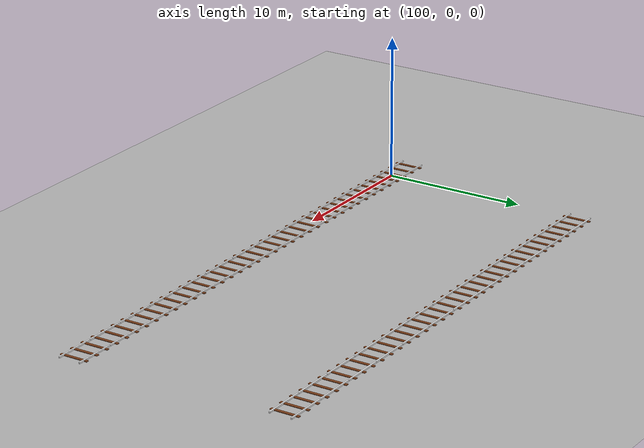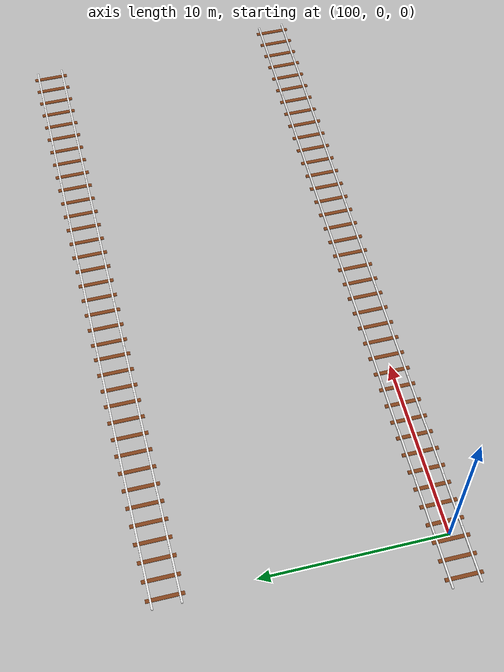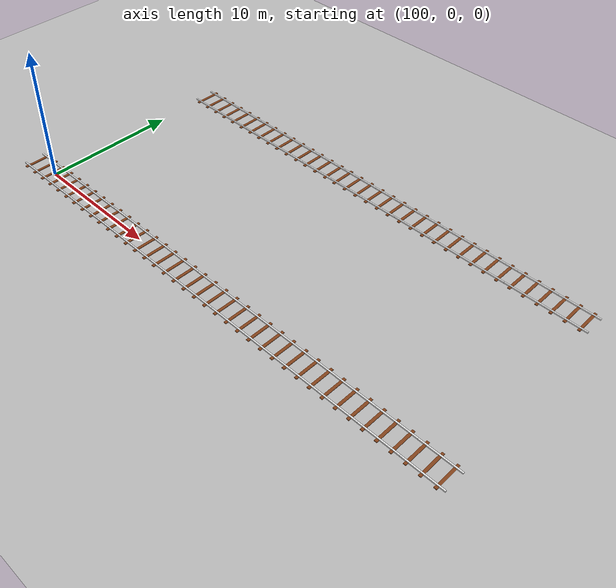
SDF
<sdf version="1.10">
 <world name="myworld">
  <model name="ground_plane">
   <static>true</static>
   <link name="link">
    <collision name="collision">
     <geometry><plane><normal>0 0 1</normal><size>1000 1000</size></plane></geometry>
    </collision>
    <visual name="visual">
     <geometry><plane><normal>0 0 1</normal><size>1000 1000</size></plane></geometry>
     <material>
      <ambient>0.699999988 0.699999988 0.699999988 1</ambient>
      <diffuse>0.699999988 0.699999988 0.699999988 1</diffuse>
     </material>
    </visual>
    <inertial>
     <mass>1</mass>
     <inertia><ixx>1</ixx><ixy>0</ixy><ixz>0</ixz><iyy>1</iyy><iyz>0</iyz><izz>1</izz></inertia>
    </inertial>
   </link>
  </model>
  <model name="rail12_22">
   <static>true</static>
   <pose>98.757199999999997 -0.0065490399999999999 0 0 0 0</pose>
   <link name="rail_link">
    <visual name="rail_left">
     <pose>0 0.75 0.050000000000000003 0 0 0</pose>
     <geometry><box><size>3 0.10000000000000001 0.10000000000000001</size></box></geometry>
     <material>
      <ambient>0.800000012 0.800000012 0.800000012 1</ambient>
      <diffuse>0.899999976 0.899999976 0.899999976 1</diffuse>
     </material>
    </visual>
    <visual name="rail_right">
     <pose>0 -0.75 0.050000000000000003 0 0 0</pose>
     <geometry><box><size>3 0.10000000000000001 0.10000000000000001</size></box></geometry>
     <material>
      <ambient>0.800000012 0.800000012 0.800000012 1</ambient>
      <diffuse>0.899999976 0.899999976 0.899999976 1</diffuse>
     </material>
    </visual>
    <visual name="traverse_1">
     <pose>1 0 0.025000000000000001 0 0 0</pose>
     <geometry><box><size>0.20000000000000001 2 0.050000000000000003</size></box></geometry>
     <material>
      <ambient>0.400000006 0.200000003 0.100000001 1</ambient>
      <diffuse>0.5 0.25 0.100000001 1</diffuse>
     </material>
    </visual>
    <visual name="traverse_2">
     <pose>0 0 0.025000000000000001 0 0 0</pose>
     <geometry><box><size>0.20000000000000001 2 0.050000000000000003</size></box></geometry>
     <material>
      <ambient>0.400000006 0.200000003 0.100000001 1</ambient>
      <diffuse>0.5 0.25 0.100000001 1</diffuse>
     </material>
    </visual>
    <visual name="traverse_3">
     <pose>-1 0 0.025000000000000001 0 0 0</pose>
     <geometry><box><size>0.20000000000000001 2 0.050000000000000003</size></box></geometry>
     <material>
      <ambient>0.400000006 0.200000003 0.100000001 1</ambient>
      <diffuse>0.5 0.25 0.100000001 1</diffuse>
     </material>
    </visual>
   </link>
  </model>
  <model name="rail12_23">
   <static>true</static>
   <pose>101.718 -0.0060675599999999996 0 0 0 0</pose>
   <link name="rail_link">
    <visual name="rail_left">
     <pose>0 0.75 0.050000000000000003 0 0 0</pose>
     <geometry><box><size>3 0.10000000000000001 0.10000000000000001</size></box></geometry>
     <material>
      <ambient>0.800000012 0.800000012 0.800000012 1</ambient>
      <diffuse>0.899999976 0.899999976 0.899999976 1</diffuse>
     </material>
    </visual>
    <visual name="rail_right">
     <pose>0 -0.75 0.050000000000000003 0 0 0</pose>
     <geometry><box><size>3 0.10000000000000001 0.10000000000000001</size></box></geometry>
     <material>
      <ambient>0.800000012 0.800000012 0.800000012 1</ambient>
      <diffuse>0.899999976 0.899999976 0.899999976 1</diffuse>
     </material>
    </visual>
    <visual name="traverse_1">
     <pose>1 0 0.025000000000000001 0 0 0</pose>
     <geometry><box><size>0.20000000000000001 2 0.050000000000000003</size></box></geometry>
     <material>
      <ambient>0.400000006 0.200000003 0.100000001 1</ambient>
      <diffuse>0.5 0.25 0.100000001 1</diffuse>
     </material>
    </visual>
    <visual name="traverse_2">
     <pose>0 0 0.025000000000000001 0 0 0</pose>
     <geometry><box><size>0.20000000000000001 2 0.050000000000000003</size></box></geometry>
     <material>
      <ambient>0.400000006 0.200000003 0.100000001 1</ambient>
      <diffuse>0.5 0.25 0.100000001 1</diffuse>
     </material>
    </visual>
    <visual name="traverse_3">
     <pose>-1 0 0.025000000000000001 0 0 0</pose>
     <geometry><box><size>0.20000000000000001 2 0.050000000000000003</size></box></geometry>
     <material>
      <ambient>0.400000006 0.200000003 0.100000001 1</ambient>
      <diffuse>0.5 0.25 0.100000001 1</diffuse>
     </material>
    </visual>
   </link>
  </model>
  <model name="rail12_24">
   <static>true</static>
   <pose>104.7 -0.0117269 0 0 0 0</pose>
   <link name="rail_link">
    <visual name="rail_left">
     <pose>0 0.75 0.050000000000000003 0 0 0</pose>
     <geometry><box><size>3 0.10000000000000001 0.10000000000000001</size></box></geometry>
     <material>
      <ambient>0.800000012 0.800000012 0.800000012 1</ambient>
      <diffuse>0.899999976 0.899999976 0.899999976 1</diffuse>
     </material>
    </visual>
    <visual name="rail_right">
     <pose>0 -0.75 0.050000000000000003 0 0 0</pose>
     <geometry><box><size>3 0.10000000000000001 0.10000000000000001</size></box></geometry>
     <material>
      <ambient>0.800000012 0.800000012 0.800000012 1</ambient>
      <diffuse>0.899999976 0.899999976 0.899999976 1</diffuse>
     </material>
    </visual>
    <visual name="traverse_1">
     <pose>1 0 0.025000000000000001 0 0 0</pose>
     <geometry><box><size>0.20000000000000001 2 0.050000000000000003</size></box></geometry>
     <material>
      <ambient>0.400000006 0.200000003 0.100000001 1</ambient>
      <diffuse>0.5 0.25 0.100000001 1</diffuse>
     </material>
    </visual>
    <visual name="traverse_2">
     <pose>0 0 0.025000000000000001 0 0 0</pose>
     <geometry><box><size>0.20000000000000001 2 0.050000000000000003</size></box></geometry>
     <material>
      <ambient>0.400000006 0.200000003 0.100000001 1</ambient>
      <diffuse>0.5 0.25 0.100000001 1</diffuse>
     </material>
    </visual>
    <visual name="traverse_3">
     <pose>-1 0 0.025000000000000001 0 0 0</pose>
     <geometry><box><size>0.20000000000000001 2 0.050000000000000003</size></box></geometry>
     <material>
      <ambient>0.400000006 0.200000003 0.100000001 1</ambient>
      <diffuse>0.5 0.25 0.100000001 1</diffuse>
     </material>
    </visual>
   </link>
  </model>
  <model name="rail12_25">
   <static>true</static>
   <pose>107.657 -0.00225786 0 0 0 0</pose>
   <link name="rail_link">
    <visual name="rail_left">
     <pose>0 0.75 0.050000000000000003 0 0 0</pose>
     <geometry><box><size>3 0.10000000000000001 0.10000000000000001</size></box></geometry>
     <material>
      <ambient>0.800000012 0.800000012 0.800000012 1</ambient>
      <diffuse>0.899999976 0.899999976 0.899999976 1</diffuse>
     </material>
    </visual>
    <visual name="rail_right">
     <pose>0 -0.75 0.050000000000000003 0 0 0</pose>
     <geometry><box><size>3 0.10000000000000001 0.10000000000000001</size></box></geometry>
     <material>
      <ambient>0.800000012 0.800000012 0.800000012 1</ambient>
      <diffuse>0.899999976 0.899999976 0.899999976 1</diffuse>
     </material>
    </visual>
    <visual name="traverse_1">
     <pose>1 0 0.025000000000000001 0 0 0</pose>
     <geometry><box><size>0.20000000000000001 2 0.050000000000000003</size></box></geometry>
     <material>
      <ambient>0.400000006 0.200000003 0.100000001 1</ambient>
      <diffuse>0.5 0.25 0.100000001 1</diffuse>
     </material>
    </visual>
    <visual name="traverse_2">
     <pose>0 0 0.025000000000000001 0 0 0</pose>
     <geometry><box><size>0.20000000000000001 2 0.050000000000000003</size></box></geometry>
     <material>
      <ambient>0.400000006 0.200000003 0.100000001 1</ambient>
      <diffuse>0.5 0.25 0.100000001 1</diffuse>
     </material>
    </visual>
    <visual name="traverse_3">
     <pose>-1 0 0.025000000000000001 0 0 0</pose>
     <geometry><box><size>0.20000000000000001 2 0.050000000000000003</size></box></geometry>
     <material>
      <ambient>0.400000006 0.200000003 0.100000001 1</ambient>
      <diffuse>0.5 0.25 0.100000001 1</diffuse>
     </material>
    </visual>
   </link>
  </model>
  <model name="rail12_26">
   <static>true</static>
   <pose>110.64700000000001 -0.0053328000000000004 0 0 0 0</pose>
   <link name="rail_link">
    <visual name="rail_left">
     <pose>0 0.75 0.050000000000000003 0 0 0</pose>
     <geometry><box><size>3 0.10000000000000001 0.10000000000000001</size></box></geometry>
     <material>
      <ambient>0.800000012 0.800000012 0.800000012 1</ambient>
      <diffuse>0.899999976 0.899999976 0.899999976 1</diffuse>
     </material>
    </visual>
    <visual name="rail_right">
     <pose>0 -0.75 0.050000000000000003 0 0 0</pose>
     <geometry><box><size>3 0.10000000000000001 0.10000000000000001</size></box></geometry>
     <material>
      <ambient>0.800000012 0.800000012 0.800000012 1</ambient>
      <diffuse>0.899999976 0.899999976 0.899999976 1</diffuse>
     </material>
    </visual>
    <visual name="traverse_1">
     <pose>1 0 0.025000000000000001 0 0 0</pose>
     <geometry><box><size>0.20000000000000001 2 0.050000000000000003</size></box></geometry>
     <material>
      <ambient>0.400000006 0.200000003 0.100000001 1</ambient>
      <diffuse>0.5 0.25 0.100000001 1</diffuse>
     </material>
    </visual>
    <visual name="traverse_2">
     <pose>0 0 0.025000000000000001 0 0 0</pose>
     <geometry><box><size>0.20000000000000001 2 0.050000000000000003</size></box></geometry>
     <material>
      <ambient>0.400000006 0.200000003 0.100000001 1</ambient>
      <diffuse>0.5 0.25 0.100000001 1</diffuse>
     </material>
    </visual>
    <visual name="traverse_3">
     <pose>-1 0 0.025000000000000001 0 0 0</pose>
     <geometry><box><size>0.20000000000000001 2 0.050000000000000003</size></box></geometry>
     <material>
      <ambient>0.400000006 0.200000003 0.100000001 1</ambient>
      <diffuse>0.5 0.25 0.100000001 1</diffuse>
     </material>
    </visual>
   </link>
  </model>
  <model name="rail12_27">
   <static>true</static>
   <pose>113.648 -0.0083607000000000004 0 0 0 0</pose>
   <link name="rail_link">
    <visual name="rail_left">
     <pose>0 0.75 0.050000000000000003 0 0 0</pose>
     <geometry><box><size>3 0.10000000000000001 0.10000000000000001</size></box></geometry>
     <material>
      <ambient>0.800000012 0.800000012 0.800000012 1</ambient>
      <diffuse>0.899999976 0.899999976 0.899999976 1</diffuse>
     </material>
    </visual>
    <visual name="rail_right">
     <pose>0 -0.75 0.050000000000000003 0 0 0</pose>
     <geometry><box><size>3 0.10000000000000001 0.10000000000000001</size></box></geometry>
     <material>
      <ambient>0.800000012 0.800000012 0.800000012 1</ambient>
      <diffuse>0.899999976 0.899999976 0.899999976 1</diffuse>
     </material>
    </visual>
    <visual name="traverse_1">
     <pose>1 0 0.025000000000000001 0 0 0</pose>
     <geometry><box><size>0.20000000000000001 2 0.050000000000000003</size></box></geometry>
     <material>
      <ambient>0.400000006 0.200000003 0.100000001 1</ambient>
      <diffuse>0.5 0.25 0.100000001 1</diffuse>
     </material>
    </visual>
    <visual name="traverse_2">
     <pose>0 0 0.025000000000000001 0 0 0</pose>
     <geometry><box><size>0.20000000000000001 2 0.050000000000000003</size></box></geometry>
     <material>
      <ambient>0.400000006 0.200000003 0.100000001 1</ambient>
      <diffuse>0.5 0.25 0.100000001 1</diffuse>
     </material>
    </visual>
    <visual name="traverse_3">
     <pose>-1 0 0.025000000000000001 0 0 0</pose>
     <geometry><box><size>0.20000000000000001 2 0.050000000000000003</size></box></geometry>
     <material>
      <ambient>0.400000006 0.200000003 0.100000001 1</ambient>
      <diffuse>0.5 0.25 0.100000001 1</diffuse>
     </material>
    </visual>
   </link>
  </model>
  <model name="rail12_28">
   <static>true</static>
   <pose>116.645 -0.012987200000000001 0 0 0 0</pose>
   <link name="rail_link">
    <visual name="rail_left">
     <pose>0 0.75 0.050000000000000003 0 0 0</pose>
     <geometry><box><size>3 0.10000000000000001 0.10000000000000001</size></box></geometry>
     <material>
      <ambient>0.800000012 0.800000012 0.800000012 1</ambient>
      <diffuse>0.899999976 0.899999976 0.899999976 1</diffuse>
     </material>
    </visual>
    <visual name="rail_right">
     <pose>0 -0.75 0.050000000000000003 0 0 0</pose>
     <geometry><box><size>3 0.10000000000000001 0.10000000000000001</size></box></geometry>
     <material>
      <ambient>0.800000012 0.800000012 0.800000012 1</ambient>
      <diffuse>0.899999976 0.899999976 0.899999976 1</diffuse>
     </material>
    </visual>
    <visual name="traverse_1">
     <pose>1 0 0.025000000000000001 0 0 0</pose>
     <geometry><box><size>0.20000000000000001 2 0.050000000000000003</size></box></geometry>
     <material>
      <ambient>0.400000006 0.200000003 0.100000001 1</ambient>
      <diffuse>0.5 0.25 0.100000001 1</diffuse>
     </material>
    </visual>
    <visual name="traverse_2">
     <pose>0 0 0.025000000000000001 0 0 0</pose>
     <geometry><box><size>0.20000000000000001 2 0.050000000000000003</size></box></geometry>
     <material>
      <ambient>0.400000006 0.200000003 0.100000001 1</ambient>
      <diffuse>0.5 0.25 0.100000001 1</diffuse>
     </material>
    </visual>
    <visual name="traverse_3">
     <pose>-1 0 0.025000000000000001 0 0 0</pose>
     <geometry><box><size>0.20000000000000001 2 0.050000000000000003</size></box></geometry>
     <material>
      <ambient>0.400000006 0.200000003 0.100000001 1</ambient>
      <diffuse>0.5 0.25 0.100000001 1</diffuse>
     </material>
    </visual>
   </link>
  </model>
  <model name="rail12_29">
   <static>true</static>
   <pose>119.64 -0.011077500000000001 0 0 0 0</pose>
   <link name="rail_link">
    <visual name="rail_left">
     <pose>0 0.75 0.050000000000000003 0 0 0</pose>
     <geometry><box><size>3 0.10000000000000001 0.10000000000000001</size></box></geometry>
     <material>
      <ambient>0.800000012 0.800000012 0.800000012 1</ambient>
      <diffuse>0.899999976 0.899999976 0.899999976 1</diffuse>
     </material>
    </visual>
    <visual name="rail_right">
     <pose>0 -0.75 0.050000000000000003 0 0 0</pose>
     <geometry><box><size>3 0.10000000000000001 0.10000000000000001</size></box></geometry>
     <material>
      <ambient>0.800000012 0.800000012 0.800000012 1</ambient>
      <diffuse>0.899999976 0.899999976 0.899999976 1</diffuse>
     </material>
    </visual>
    <visual name="traverse_1">
     <pose>1 0 0.025000000000000001 0 0 0</pose>
     <geometry><box><size>0.20000000000000001 2 0.050000000000000003</size></box></geometry>
     <material>
      <ambient>0.400000006 0.200000003 0.100000001 1</ambient>
      <diffuse>0.5 0.25 0.100000001 1</diffuse>
     </material>
    </visual>
    <visual name="traverse_2">
     <pose>0 0 0.025000000000000001 0 0 0</pose>
     <geometry><box><size>0.20000000000000001 2 0.050000000000000003</size></box></geometry>
     <material>
      <ambient>0.400000006 0.200000003 0.100000001 1</ambient>
      <diffuse>0.5 0.25 0.100000001 1</diffuse>
     </material>
    </visual>
    <visual name="traverse_3">
     <pose>-1 0 0.025000000000000001 0 0 0</pose>
     <geometry><box><size>0.20000000000000001 2 0.050000000000000003</size></box></geometry>
     <material>
      <ambient>0.400000006 0.200000003 0.100000001 1</ambient>
      <diffuse>0.5 0.25 0.100000001 1</diffuse>
     </material>
    </visual>
   </link>
  </model>
  <model name="rail12_30">
   <static>true</static>
   <pose>122.629 -0.012317099999999999 0 0 0 0</pose>
   <link name="rail_link">
    <visual name="rail_left">
     <pose>0 0.75 0.050000000000000003 0 0 0</pose>
     <geometry><box><size>3 0.10000000000000001 0.10000000000000001</size></box></geometry>
     <material>
      <ambient>0.800000012 0.800000012 0.800000012 1</ambient>
      <diffuse>0.899999976 0.899999976 0.899999976 1</diffuse>
     </material>
    </visual>
    <visual name="rail_right">
     <pose>0 -0.75 0.050000000000000003 0 0 0</pose>
     <geometry><box><size>3 0.10000000000000001 0.10000000000000001</size></box></geometry>
     <material>
      <ambient>0.800000012 0.800000012 0.800000012 1</ambient>
      <diffuse>0.899999976 0.899999976 0.899999976 1</diffuse>
     </material>
    </visual>
    <visual name="traverse_1">
     <pose>1 0 0.025000000000000001 0 0 0</pose>
     <geometry><box><size>0.20000000000000001 2 0.050000000000000003</size></box></geometry>
     <material>
      <ambient>0.400000006 0.200000003 0.100000001 1</ambient>
      <diffuse>0.5 0.25 0.100000001 1</diffuse>
     </material>
    </visual>
    <visual name="traverse_2">
     <pose>0 0 0.025000000000000001 0 0 0</pose>
     <geometry><box><size>0.20000000000000001 2 0.050000000000000003</size></box></geometry>
     <material>
      <ambient>0.400000006 0.200000003 0.100000001 1</ambient>
      <diffuse>0.5 0.25 0.100000001 1</diffuse>
     </material>
    </visual>
    <visual name="traverse_3">
     <pose>-1 0 0.025000000000000001 0 0 0</pose>
     <geometry><box><size>0.20000000000000001 2 0.050000000000000003</size></box></geometry>
     <material>
      <ambient>0.400000006 0.200000003 0.100000001 1</ambient>
      <diffuse>0.5 0.25 0.100000001 1</diffuse>
     </material>
    </visual>
   </link>
  </model>
  <model name="rail12_31">
   <static>true</static>
   <pose>125.631 -0.011894200000000001 0 0 0 0</pose>
   <link name="rail_link">
    <visual name="rail_left">
     <pose>0 0.75 0.050000000000000003 0 0 0</pose>
     <geometry><box><size>3 0.10000000000000001 0.10000000000000001</size></box></geometry>
     <material>
      <ambient>0.800000012 0.800000012 0.800000012 1</ambient>
      <diffuse>0.899999976 0.899999976 0.899999976 1</diffuse>
     </material>
    </visual>
    <visual name="rail_right">
     <pose>0 -0.75 0.050000000000000003 0 0 0</pose>
     <geometry><box><size>3 0.10000000000000001 0.10000000000000001</size></box></geometry>
     <material>
      <ambient>0.800000012 0.800000012 0.800000012 1</ambient>
      <diffuse>0.899999976 0.899999976 0.899999976 1</diffuse>
     </material>
    </visual>
    <visual name="traverse_1">
     <pose>1 0 0.025000000000000001 0 0 0</pose>
     <geometry><box><size>0.20000000000000001 2 0.050000000000000003</size></box></geometry>
     <material>
      <ambient>0.400000006 0.200000003 0.100000001 1</ambient>
      <diffuse>0.5 0.25 0.100000001 1</diffuse>
     </material>
    </visual>
    <visual name="traverse_2">
     <pose>0 0 0.025000000000000001 0 0 0</pose>
     <geometry><box><size>0.20000000000000001 2 0.050000000000000003</size></box></geometry>
     <material>
      <ambient>0.400000006 0.200000003 0.100000001 1</ambient>
      <diffuse>0.5 0.25 0.100000001 1</diffuse>
     </material>
    </visual>
    <visual name="traverse_3">
     <pose>-1 0 0.025000000000000001 0 0 0</pose>
     <geometry><box><size>0.20000000000000001 2 0.050000000000000003</size></box></geometry>
     <material>
      <ambient>0.400000006 0.200000003 0.100000001 1</ambient>
      <diffuse>0.5 0.25 0.100000001 1</diffuse>
     </material>
    </visual>
   </link>
  </model>
  <model name="rail12_32">
   <static>true</static>
   <pose>128.63 -0.017479700000000001 0 0 0 0</pose>
   <link name="rail_link">
    <visual name="rail_left">
     <pose>0 0.75 0.050000000000000003 0 0 0</pose>
     <geometry><box><size>3 0.10000000000000001 0.10000000000000001</size></box></geometry>
     <material>
      <ambient>0.800000012 0.800000012 0.800000012 1</ambient>
      <diffuse>0.899999976 0.899999976 0.899999976 1</diffuse>
     </material>
    </visual>
    <visual name="rail_right">
     <pose>0 -0.75 0.050000000000000003 0 0 0</pose>
     <geometry><box><size>3 0.10000000000000001 0.10000000000000001</size></box></geometry>
     <material>
      <ambient>0.800000012 0.800000012 0.800000012 1</ambient>
      <diffuse>0.899999976 0.899999976 0.899999976 1</diffuse>
     </material>
    </visual>
    <visual name="traverse_1">
     <pose>1 0 0.025000000000000001 0 0 0</pose>
     <geometry><box><size>0.20000000000000001 2 0.050000000000000003</size></box></geometry>
     <material>
      <ambient>0.400000006 0.200000003 0.100000001 1</ambient>
      <diffuse>0.5 0.25 0.100000001 1</diffuse>
     </material>
    </visual>
    <visual name="traverse_2">
     <pose>0 0 0.025000000000000001 0 0 0</pose>
     <geometry><box><size>0.20000000000000001 2 0.050000000000000003</size></box></geometry>
     <material>
      <ambient>0.400000006 0.200000003 0.100000001 1</ambient>
      <diffuse>0.5 0.25 0.100000001 1</diffuse>
     </material>
    </visual>
    <visual name="traverse_3">
     <pose>-1 0 0.025000000000000001 0 0 0</pose>
     <geometry><box><size>0.20000000000000001 2 0.050000000000000003</size></box></geometry>
     <material>
      <ambient>0.400000006 0.200000003 0.100000001 1</ambient>
      <diffuse>0.5 0.25 0.100000001 1</diffuse>
     </material>
    </visual>
   </link>
  </model>
  <model name="rail12_33">
   <static>true</static>
   <pose>131.62700000000001 -0.0186401 0 0 0 0</pose>
   <link name="rail_link">
    <visual name="rail_left">
     <pose>0 0.75 0.050000000000000003 0 0 0</pose>
     <geometry><box><size>3 0.10000000000000001 0.10000000000000001</size></box></geometry>
     <material>
      <ambient>0.800000012 0.800000012 0.800000012 1</ambient>
      <diffuse>0.899999976 0.899999976 0.899999976 1</diffuse>
     </material>
    </visual>
    <visual name="rail_right">
     <pose>0 -0.75 0.050000000000000003 0 0 0</pose>
     <geometry><box><size>3 0.10000000000000001 0.10000000000000001</size></box></geometry>
     <material>
      <ambient>0.800000012 0.800000012 0.800000012 1</ambient>
      <diffuse>0.899999976 0.899999976 0.899999976 1</diffuse>
     </material>
    </visual>
    <visual name="traverse_1">
     <pose>1 0 0.025000000000000001 0 0 0</pose>
     <geometry><box><size>0.20000000000000001 2 0.050000000000000003</size></box></geometry>
     <material>
      <ambient>0.400000006 0.200000003 0.100000001 1</ambient>
      <diffuse>0.5 0.25 0.100000001 1</diffuse>
     </material>
    </visual>
    <visual name="traverse_2">
     <pose>0 0 0.025000000000000001 0 0 0</pose>
     <geometry><box><size>0.20000000000000001 2 0.050000000000000003</size></box></geometry>
     <material>
      <ambient>0.400000006 0.200000003 0.100000001 1</ambient>
      <diffuse>0.5 0.25 0.100000001 1</diffuse>
     </material>
    </visual>
    <visual name="traverse_3">
     <pose>-1 0 0.025000000000000001 0 0 0</pose>
     <geometry><box><size>0.20000000000000001 2 0.050000000000000003</size></box></geometry>
     <material>
      <ambient>0.400000006 0.200000003 0.100000001 1</ambient>
      <diffuse>0.5 0.25 0.100000001 1</diffuse>
     </material>
    </visual>
   </link>
  </model>
  <model name="rail12_34">
   <static>true</static>
   <pose>134.61699999999999 -0.022436899999999999 0 0 0 0</pose>
   <link name="rail_link">
    <visual name="rail_left">
     <pose>0 0.75 0.050000000000000003 0 0 0</pose>
     <geometry><box><size>3 0.10000000000000001 0.10000000000000001</size></box></geometry>
     <material>
      <ambient>0.800000012 0.800000012 0.800000012 1</ambient>
      <diffuse>0.899999976 0.899999976 0.899999976 1</diffuse>
     </material>
    </visual>
    <visual name="rail_right">
     <pose>0 -0.75 0.050000000000000003 0 0 0</pose>
     <geometry><box><size>3 0.10000000000000001 0.10000000000000001</size></box></geometry>
     <material>
      <ambient>0.800000012 0.800000012 0.800000012 1</ambient>
      <diffuse>0.899999976 0.899999976 0.899999976 1</diffuse>
     </material>
    </visual>
    <visual name="traverse_1">
     <pose>1 0 0.025000000000000001 0 0 0</pose>
     <geometry><box><size>0.20000000000000001 2 0.050000000000000003</size></box></geometry>
     <material>
      <ambient>0.400000006 0.200000003 0.100000001 1</ambient>
      <diffuse>0.5 0.25 0.100000001 1</diffuse>
     </material>
    </visual>
    <visual name="traverse_2">
     <pose>0 0 0.025000000000000001 0 0 0</pose>
     <geometry><box><size>0.20000000000000001 2 0.050000000000000003</size></box></geometry>
     <material>
      <ambient>0.400000006 0.200000003 0.100000001 1</ambient>
      <diffuse>0.5 0.25 0.100000001 1</diffuse>
     </material>
    </visual>
    <visual name="traverse_3">
     <pose>-1 0 0.025000000000000001 0 0 0</pose>
     <geometry><box><size>0.20000000000000001 2 0.050000000000000003</size></box></geometry>
     <material>
      <ambient>0.400000006 0.200000003 0.100000001 1</ambient>
      <diffuse>0.5 0.25 0.100000001 1</diffuse>
     </material>
    </visual>
   </link>
  </model>
  <model name="rail12_37_57">
   <static>true</static>
   <pose>101.16500000000001 14.5788500000000001 0 0 0 0</pose>
   <link name="rail_link">
    <visual name="rail_left">
     <pose>0 0.75 0.050000000000000003 0 0 0</pose>
     <geometry><box><size>3 0.10000000000000001 0.10000000000000001</size></box></geometry>
     <material>
      <ambient>0.800000012 0.800000012 0.800000012 1</ambient>
      <diffuse>0.899999976 0.899999976 0.899999976 1</diffuse>
     </material>
    </visual>
    <visual name="rail_right">
     <pose>0 -0.75 0.050000000000000003 0 0 0</pose>
     <geometry><box><size>3 0.10000000000000001 0.10000000000000001</size></box></geometry>
     <material>
      <ambient>0.800000012 0.800000012 0.800000012 1</ambient>
      <diffuse>0.899999976 0.899999976 0.899999976 1</diffuse>
     </material>
    </visual>
    <visual name="traverse_1">
     <pose>1 0 0.025000000000000001 0 0 0</pose>
     <geometry><box><size>0.20000000000000001 2 0.050000000000000003</size></box></geometry>
     <material>
      <ambient>0.400000006 0.200000003 0.100000001 1</ambient>
      <diffuse>0.5 0.25 0.100000001 1</diffuse>
     </material>
    </visual>
    <visual name="traverse_2">
     <pose>0 0 0.025000000000000001 0 0 0</pose>
     <geometry><box><size>0.20000000000000001 2 0.050000000000000003</size></box></geometry>
     <material>
      <ambient>0.400000006 0.200000003 0.100000001 1</ambient>
      <diffuse>0.5 0.25 0.100000001 1</diffuse>
     </material>
    </visual>
    <visual name="traverse_3">
     <pose>-1 0 0.025000000000000001 0 0 0</pose>
     <geometry><box><size>0.20000000000000001 2 0.050000000000000003</size></box></geometry>
     <material>
      <ambient>0.400000006 0.200000003 0.100000001 1</ambient>
      <diffuse>0.5 0.25 0.100000001 1</diffuse>
     </material>
    </visual>
   </link>
  </model>
  <model name="rail12_37_58">
   <static>true</static>
   <pose>104.154 14.5803700000000003 0 0 0 0</pose>
   <link name="rail_link">
    <visual name="rail_left">
     <pose>0 0.75 0.050000000000000003 0 0 0</pose>
     <geometry><box><size>3 0.10000000000000001 0.10000000000000001</size></box></geometry>
     <material>
      <ambient>0.800000012 0.800000012 0.800000012 1</ambient>
      <diffuse>0.899999976 0.899999976 0.899999976 1</diffuse>
     </material>
    </visual>
    <visual name="rail_right">
     <pose>0 -0.75 0.050000000000000003 0 0 0</pose>
     <geometry><box><size>3 0.10000000000000001 0.10000000000000001</size></box></geometry>
     <material>
      <ambient>0.800000012 0.800000012 0.800000012 1</ambient>
      <diffuse>0.899999976 0.899999976 0.899999976 1</diffuse>
     </material>
    </visual>
    <visual name="traverse_1">
     <pose>1 0 0.025000000000000001 0 0 0</pose>
     <geometry><box><size>0.20000000000000001 2 0.050000000000000003</size></box></geometry>
     <material>
      <ambient>0.400000006 0.200000003 0.100000001 1</ambient>
      <diffuse>0.5 0.25 0.100000001 1</diffuse>
     </material>
    </visual>
    <visual name="traverse_2">
     <pose>0 0 0.025000000000000001 0 0 0</pose>
     <geometry><box><size>0.20000000000000001 2 0.050000000000000003</size></box></geometry>
     <material>
      <ambient>0.400000006 0.200000003 0.100000001 1</ambient>
      <diffuse>0.5 0.25 0.100000001 1</diffuse>
     </material>
    </visual>
    <visual name="traverse_3">
     <pose>-1 0 0.025000000000000001 0 0 0</pose>
     <geometry><box><size>0.20000000000000001 2 0.050000000000000003</size></box></geometry>
     <material>
      <ambient>0.400000006 0.200000003 0.100000001 1</ambient>
      <diffuse>0.5 0.25 0.100000001 1</diffuse>
     </material>
    </visual>
   </link>
  </model>
  <model name="rail12_37_59">
   <static>true</static>
   <pose>107.14100000000001 14.5867500000000003 0 0 0 0</pose>
   <link name="rail_link">
    <visual name="rail_left">
     <pose>0 0.75 0.050000000000000003 0 0 0</pose>
     <geometry><box><size>3 0.10000000000000001 0.10000000000000001</size></box></geometry>
     <material>
      <ambient>0.800000012 0.800000012 0.800000012 1</ambient>
      <diffuse>0.899999976 0.899999976 0.899999976 1</diffuse>
     </material>
    </visual>
    <visual name="rail_right">
     <pose>0 -0.75 0.050000000000000003 0 0 0</pose>
     <geometry><box><size>3 0.10000000000000001 0.10000000000000001</size></box></geometry>
     <material>
      <ambient>0.800000012 0.800000012 0.800000012 1</ambient>
      <diffuse>0.899999976 0.899999976 0.899999976 1</diffuse>
     </material>
    </visual>
    <visual name="traverse_1">
     <pose>1 0 0.025000000000000001 0 0 0</pose>
     <geometry><box><size>0.20000000000000001 2 0.050000000000000003</size></box></geometry>
     <material>
      <ambient>0.400000006 0.200000003 0.100000001 1</ambient>
      <diffuse>0.5 0.25 0.100000001 1</diffuse>
     </material>
    </visual>
    <visual name="traverse_2">
     <pose>0 0 0.025000000000000001 0 0 0</pose>
     <geometry><box><size>0.20000000000000001 2 0.050000000000000003</size></box></geometry>
     <material>
      <ambient>0.400000006 0.200000003 0.100000001 1</ambient>
      <diffuse>0.5 0.25 0.100000001 1</diffuse>
     </material>
    </visual>
    <visual name="traverse_3">
     <pose>-1 0 0.025000000000000001 0 0 0</pose>
     <geometry><box><size>0.20000000000000001 2 0.050000000000000003</size></box></geometry>
     <material>
      <ambient>0.400000006 0.200000003 0.100000001 1</ambient>
      <diffuse>0.5 0.25 0.100000001 1</diffuse>
     </material>
    </visual>
   </link>
  </model>
  <model name="rail12_37_60">
   <static>true</static>
   <pose>110.125 14.5905800000000001 0 0 0 0</pose>
   <link name="rail_link">
    <visual name="rail_left">
     <pose>0 0.75 0.050000000000000003 0 0 0</pose>
     <geometry><box><size>3 0.10000000000000001 0.10000000000000001</size></box></geometry>
     <material>
      <ambient>0.800000012 0.800000012 0.800000012 1</ambient>
      <diffuse>0.899999976 0.899999976 0.899999976 1</diffuse>
     </material>
    </visual>
    <visual name="rail_right">
     <pose>0 -0.75 0.050000000000000003 0 0 0</pose>
     <geometry><box><size>3 0.10000000000000001 0.10000000000000001</size></box></geometry>
     <material>
      <ambient>0.800000012 0.800000012 0.800000012 1</ambient>
      <diffuse>0.899999976 0.899999976 0.899999976 1</diffuse>
     </material>
    </visual>
    <visual name="traverse_1">
     <pose>1 0 0.025000000000000001 0 0 0</pose>
     <geometry><box><size>0.20000000000000001 2 0.050000000000000003</size></box></geometry>
     <material>
      <ambient>0.400000006 0.200000003 0.100000001 1</ambient>
      <diffuse>0.5 0.25 0.100000001 1</diffuse>
     </material>
    </visual>
    <visual name="traverse_2">
     <pose>0 0 0.025000000000000001 0 0 0</pose>
     <geometry><box><size>0.20000000000000001 2 0.050000000000000003</size></box></geometry>
     <material>
      <ambient>0.400000006 0.200000003 0.100000001 1</ambient>
      <diffuse>0.5 0.25 0.100000001 1</diffuse>
     </material>
    </visual>
    <visual name="traverse_3">
     <pose>-1 0 0.025000000000000001 0 0 0</pose>
     <geometry><box><size>0.20000000000000001 2 0.050000000000000003</size></box></geometry>
     <material>
      <ambient>0.400000006 0.200000003 0.100000001 1</ambient>
      <diffuse>0.5 0.25 0.100000001 1</diffuse>
     </material>
    </visual>
   </link>
  </model>
  <model name="rail12_37_61">
   <static>true</static>
   <pose>113.092 14.5946300000000004 0 0 0 0</pose>
   <link name="rail_link">
    <visual name="rail_left">
     <pose>0 0.75 0.050000000000000003 0 0 0</pose>
     <geometry><box><size>3 0.10000000000000001 0.10000000000000001</size></box></geometry>
     <material>
      <ambient>0.800000012 0.800000012 0.800000012 1</ambient>
      <diffuse>0.899999976 0.899999976 0.899999976 1</diffuse>
     </material>
    </visual>
    <visual name="rail_right">
     <pose>0 -0.75 0.050000000000000003 0 0 0</pose>
     <geometry><box><size>3 0.10000000000000001 0.10000000000000001</size></box></geometry>
     <material>
      <ambient>0.800000012 0.800000012 0.800000012 1</ambient>
      <diffuse>0.899999976 0.899999976 0.899999976 1</diffuse>
     </material>
    </visual>
    <visual name="traverse_1">
     <pose>1 0 0.025000000000000001 0 0 0</pose>
     <geometry><box><size>0.20000000000000001 2 0.050000000000000003</size></box></geometry>
     <material>
      <ambient>0.400000006 0.200000003 0.100000001 1</ambient>
      <diffuse>0.5 0.25 0.100000001 1</diffuse>
     </material>
    </visual>
    <visual name="traverse_2">
     <pose>0 0 0.025000000000000001 0 0 0</pose>
     <geometry><box><size>0.20000000000000001 2 0.050000000000000003</size></box></geometry>
     <material>
      <ambient>0.400000006 0.200000003 0.100000001 1</ambient>
      <diffuse>0.5 0.25 0.100000001 1</diffuse>
     </material>
    </visual>
    <visual name="traverse_3">
     <pose>-1 0 0.025000000000000001 0 0 0</pose>
     <geometry><box><size>0.20000000000000001 2 0.050000000000000003</size></box></geometry>
     <material>
      <ambient>0.400000006 0.200000003 0.100000001 1</ambient>
      <diffuse>0.5 0.25 0.100000001 1</diffuse>
     </material>
    </visual>
   </link>
  </model>
  <model name="rail12_37_62">
   <static>true</static>
   <pose>116.02200000000001 14.5968099999999996 0 0 0 0</pose>
   <link name="rail_link">
    <visual name="rail_left">
     <pose>0 0.75 0.050000000000000003 0 0 0</pose>
     <geometry><box><size>3 0.10000000000000001 0.10000000000000001</size></box></geometry>
     <material>
      <ambient>0.800000012 0.800000012 0.800000012 1</ambient>
      <diffuse>0.899999976 0.899999976 0.899999976 1</diffuse>
     </material>
    </visual>
    <visual name="rail_right">
     <pose>0 -0.75 0.050000000000000003 0 0 0</pose>
     <geometry><box><size>3 0.10000000000000001 0.10000000000000001</size></box></geometry>
     <material>
      <ambient>0.800000012 0.800000012 0.800000012 1</ambient>
      <diffuse>0.899999976 0.899999976 0.899999976 1</diffuse>
     </material>
    </visual>
    <visual name="traverse_1">
     <pose>1 0 0.025000000000000001 0 0 0</pose>
     <geometry><box><size>0.20000000000000001 2 0.050000000000000003</size></box></geometry>
     <material>
      <ambient>0.400000006 0.200000003 0.100000001 1</ambient>
      <diffuse>0.5 0.25 0.100000001 1</diffuse>
     </material>
    </visual>
    <visual name="traverse_2">
     <pose>0 0 0.025000000000000001 0 0 0</pose>
     <geometry><box><size>0.20000000000000001 2 0.050000000000000003</size></box></geometry>
     <material>
      <ambient>0.400000006 0.200000003 0.100000001 1</ambient>
      <diffuse>0.5 0.25 0.100000001 1</diffuse>
     </material>
    </visual>
    <visual name="traverse_3">
     <pose>-1 0 0.025000000000000001 0 0 0</pose>
     <geometry><box><size>0.20000000000000001 2 0.050000000000000003</size></box></geometry>
     <material>
      <ambient>0.400000006 0.200000003 0.100000001 1</ambient>
      <diffuse>0.5 0.25 0.100000001 1</diffuse>
     </material>
    </visual>
   </link>
  </model>
  <model name="rail12_37_63">
   <static>true</static>
   <pose>119.027 14.5981300000000003 0 0 0 0</pose>
   <link name="rail_link">
    <visual name="rail_left">
     <pose>0 0.75 0.050000000000000003 0 0 0</pose>
     <geometry><box><size>3 0.10000000000000001 0.10000000000000001</size></box></geometry>
     <material>
      <ambient>0.800000012 0.800000012 0.800000012 1</ambient>
      <diffuse>0.899999976 0.899999976 0.899999976 1</diffuse>
     </material>
    </visual>
    <visual name="rail_right">
     <pose>0 -0.75 0.050000000000000003 0 0 0</pose>
     <geometry><box><size>3 0.10000000000000001 0.10000000000000001</size></box></geometry>
     <material>
      <ambient>0.800000012 0.800000012 0.800000012 1</ambient>
      <diffuse>0.899999976 0.899999976 0.899999976 1</diffuse>
     </material>
    </visual>
    <visual name="traverse_1">
     <pose>1 0 0.025000000000000001 0 0 0</pose>
     <geometry><box><size>0.20000000000000001 2 0.050000000000000003</size></box></geometry>
     <material>
      <ambient>0.400000006 0.200000003 0.100000001 1</ambient>
      <diffuse>0.5 0.25 0.100000001 1</diffuse>
     </material>
    </visual>
    <visual name="traverse_2">
     <pose>0 0 0.025000000000000001 0 0 0</pose>
     <geometry><box><size>0.20000000000000001 2 0.050000000000000003</size></box></geometry>
     <material>
      <ambient>0.400000006 0.200000003 0.100000001 1</ambient>
      <diffuse>0.5 0.25 0.100000001 1</diffuse>
     </material>
    </visual>
    <visual name="traverse_3">
     <pose>-1 0 0.025000000000000001 0 0 0</pose>
     <geometry><box><size>0.20000000000000001 2 0.050000000000000003</size></box></geometry>
     <material>
      <ambient>0.400000006 0.200000003 0.100000001 1</ambient>
      <diffuse>0.5 0.25 0.100000001 1</diffuse>
     </material>
    </visual>
   </link>
  </model>
  <model name="rail12_37_64">
   <static>true</static>
   <pose>122.03 14.6068300000000004 0 0 0 0</pose>
   <link name="rail_link">
    <visual name="rail_left">
     <pose>0 0.75 0.050000000000000003 0 0 0</pose>
     <geometry><box><size>3 0.10000000000000001 0.10000000000000001</size></box></geometry>
     <material>
      <ambient>0.800000012 0.800000012 0.800000012 1</ambient>
      <diffuse>0.899999976 0.899999976 0.899999976 1</diffuse>
     </material>
    </visual>
    <visual name="rail_right">
     <pose>0 -0.75 0.050000000000000003 0 0 0</pose>
     <geometry><box><size>3 0.10000000000000001 0.10000000000000001</size></box></geometry>
     <material>
      <ambient>0.800000012 0.800000012 0.800000012 1</ambient>
      <diffuse>0.899999976 0.899999976 0.899999976 1</diffuse>
     </material>
    </visual>
    <visual name="traverse_1">
     <pose>1 0 0.025000000000000001 0 0 0</pose>
     <geometry><box><size>0.20000000000000001 2 0.050000000000000003</size></box></geometry>
     <material>
      <ambient>0.400000006 0.200000003 0.100000001 1</ambient>
      <diffuse>0.5 0.25 0.100000001 1</diffuse>
     </material>
    </visual>
    <visual name="traverse_2">
     <pose>0 0 0.025000000000000001 0 0 0</pose>
     <geometry><box><size>0.20000000000000001 2 0.050000000000000003</size></box></geometry>
     <material>
      <ambient>0.400000006 0.200000003 0.100000001 1</ambient>
      <diffuse>0.5 0.25 0.100000001 1</diffuse>
     </material>
    </visual>
    <visual name="traverse_3">
     <pose>-1 0 0.025000000000000001 0 0 0</pose>
     <geometry><box><size>0.20000000000000001 2 0.050000000000000003</size></box></geometry>
     <material>
      <ambient>0.400000006 0.200000003 0.100000001 1</ambient>
      <diffuse>0.5 0.25 0.100000001 1</diffuse>
     </material>
    </visual>
   </link>
  </model>
  <model name="rail12_37_65">
   <static>true</static>
   <pose>125.02500000000001 14.6059900000000003 0 0 0 0</pose>
   <link name="rail_link">
    <visual name="rail_left">
     <pose>0 0.75 0.050000000000000003 0 0 0</pose>
     <geometry><box><size>3 0.10000000000000001 0.10000000000000001</size></box></geometry>
     <material>
      <ambient>0.800000012 0.800000012 0.800000012 1</ambient>
      <diffuse>0.899999976 0.899999976 0.899999976 1</diffuse>
     </material>
    </visual>
    <visual name="rail_right">
     <pose>0 -0.75 0.050000000000000003 0 0 0</pose>
     <geometry><box><size>3 0.10000000000000001 0.10000000000000001</size></box></geometry>
     <material>
      <ambient>0.800000012 0.800000012 0.800000012 1</ambient>
      <diffuse>0.899999976 0.899999976 0.899999976 1</diffuse>
     </material>
    </visual>
    <visual name="traverse_1">
     <pose>1 0 0.025000000000000001 0 0 0</pose>
     <geometry><box><size>0.20000000000000001 2 0.050000000000000003</size></box></geometry>
     <material>
      <ambient>0.400000006 0.200000003 0.100000001 1</ambient>
      <diffuse>0.5 0.25 0.100000001 1</diffuse>
     </material>
    </visual>
    <visual name="traverse_2">
     <pose>0 0 0.025000000000000001 0 0 0</pose>
     <geometry><box><size>0.20000000000000001 2 0.050000000000000003</size></box></geometry>
     <material>
      <ambient>0.400000006 0.200000003 0.100000001 1</ambient>
      <diffuse>0.5 0.25 0.100000001 1</diffuse>
     </material>
    </visual>
    <visual name="traverse_3">
     <pose>-1 0 0.025000000000000001 0 0 0</pose>
     <geometry><box><size>0.20000000000000001 2 0.050000000000000003</size></box></geometry>
     <material>
      <ambient>0.400000006 0.200000003 0.100000001 1</ambient>
      <diffuse>0.5 0.25 0.100000001 1</diffuse>
     </material>
    </visual>
   </link>
  </model>
  <model name="rail12_37_66">
   <static>true</static>
   <pose>128.02099999999999 14.6056999999999997 0 0 0 0</pose>
   <link name="rail_link">
    <visual name="rail_left">
     <pose>0 0.75 0.050000000000000003 0 0 0</pose>
     <geometry><box><size>3 0.10000000000000001 0.10000000000000001</size></box></geometry>
     <material>
      <ambient>0.800000012 0.800000012 0.800000012 1</ambient>
      <diffuse>0.899999976 0.899999976 0.899999976 1</diffuse>
     </material>
    </visual>
    <visual name="rail_right">
     <pose>0 -0.75 0.050000000000000003 0 0 0</pose>
     <geometry><box><size>3 0.10000000000000001 0.10000000000000001</size></box></geometry>
     <material>
      <ambient>0.800000012 0.800000012 0.800000012 1</ambient>
      <diffuse>0.899999976 0.899999976 0.899999976 1</diffuse>
     </material>
    </visual>
    <visual name="traverse_1">
     <pose>1 0 0.025000000000000001 0 0 0</pose>
     <geometry><box><size>0.20000000000000001 2 0.050000000000000003</size></box></geometry>
     <material>
      <ambient>0.400000006 0.200000003 0.100000001 1</ambient>
      <diffuse>0.5 0.25 0.100000001 1</diffuse>
     </material>
    </visual>
    <visual name="traverse_2">
     <pose>0 0 0.025000000000000001 0 0 0</pose>
     <geometry><box><size>0.20000000000000001 2 0.050000000000000003</size></box></geometry>
     <material>
      <ambient>0.400000006 0.200000003 0.100000001 1</ambient>
      <diffuse>0.5 0.25 0.100000001 1</diffuse>
     </material>
    </visual>
    <visual name="traverse_3">
     <pose>-1 0 0.025000000000000001 0 0 0</pose>
     <geometry><box><size>0.20000000000000001 2 0.050000000000000003</size></box></geometry>
     <material>
      <ambient>0.400000006 0.200000003 0.100000001 1</ambient>
      <diffuse>0.5 0.25 0.100000001 1</diffuse>
     </material>
    </visual>
   </link>
  </model>
  <model name="rail12_37_67">
   <static>true</static>
   <pose>131.02600000000001 14.6100199999999996 0 0 0 0</pose>
   <link name="rail_link">
    <visual name="rail_left">
     <pose>0 0.75 0.050000000000000003 0 0 0</pose>
     <geometry><box><size>3 0.10000000000000001 0.10000000000000001</size></box></geometry>
     <material>
      <ambient>0.800000012 0.800000012 0.800000012 1</ambient>
      <diffuse>0.899999976 0.899999976 0.899999976 1</diffuse>
     </material>
    </visual>
    <visual name="rail_right">
     <pose>0 -0.75 0.050000000000000003 0 0 0</pose>
     <geometry><box><size>3 0.10000000000000001 0.10000000000000001</size></box></geometry>
     <material>
      <ambient>0.800000012 0.800000012 0.800000012 1</ambient>
      <diffuse>0.899999976 0.899999976 0.899999976 1</diffuse>
     </material>
    </visual>
    <visual name="traverse_1">
     <pose>1 0 0.025000000000000001 0 0 0</pose>
     <geometry><box><size>0.20000000000000001 2 0.050000000000000003</size></box></geometry>
     <material>
      <ambient>0.400000006 0.200000003 0.100000001 1</ambient>
      <diffuse>0.5 0.25 0.100000001 1</diffuse>
     </material>
    </visual>
    <visual name="traverse_2">
     <pose>0 0 0.025000000000000001 0 0 0</pose>
     <geometry><box><size>0.20000000000000001 2 0.050000000000000003</size></box></geometry>
     <material>
      <ambient>0.400000006 0.200000003 0.100000001 1</ambient>
      <diffuse>0.5 0.25 0.100000001 1</diffuse>
     </material>
    </visual>
    <visual name="traverse_3">
     <pose>-1 0 0.025000000000000001 0 0 0</pose>
     <geometry><box><size>0.20000000000000001 2 0.050000000000000003</size></box></geometry>
     <material>
      <ambient>0.400000006 0.200000003 0.100000001 1</ambient>
      <diffuse>0.5 0.25 0.100000001 1</diffuse>
     </material>
    </visual>
   </link>
  </model>
  <model name="rail12_37_68">
   <static>true</static>
   <pose>134.02000000000001 14.6068600000000002 0 0 0 0</pose>
   <link name="rail_link">
    <visual name="rail_left">
     <pose>0 0.75 0.050000000000000003 0 0 0</pose>
     <geometry><box><size>3 0.10000000000000001 0.10000000000000001</size></box></geometry>
     <material>
      <ambient>0.800000012 0.800000012 0.800000012 1</ambient>
      <diffuse>0.899999976 0.899999976 0.899999976 1</diffuse>
     </material>
    </visual>
    <visual name="rail_right">
     <pose>0 -0.75 0.050000000000000003 0 0 0</pose>
     <geometry><box><size>3 0.10000000000000001 0.10000000000000001</size></box></geometry>
     <material>
      <ambient>0.800000012 0.800000012 0.800000012 1</ambient>
      <diffuse>0.899999976 0.899999976 0.899999976 1</diffuse>
     </material>
    </visual>
    <visual name="traverse_1">
     <pose>1 0 0.025000000000000001 0 0 0</pose>
     <geometry><box><size>0.20000000000000001 2 0.050000000000000003</size></box></geometry>
     <material>
      <ambient>0.400000006 0.200000003 0.100000001 1</ambient>
      <diffuse>0.5 0.25 0.100000001 1</diffuse>
     </material>
    </visual>
    <visual name="traverse_2">
     <pose>0 0 0.025000000000000001 0 0 0</pose>
     <geometry><box><size>0.20000000000000001 2 0.050000000000000003</size></box></geometry>
     <material>
      <ambient>0.400000006 0.200000003 0.100000001 1</ambient>
      <diffuse>0.5 0.25 0.100000001 1</diffuse>
     </material>
    </visual>
    <visual name="traverse_3">
     <pose>-1 0 0.025000000000000001 0 0 0</pose>
     <geometry><box><size>0.20000000000000001 2 0.050000000000000003</size></box></geometry>
     <material>
      <ambient>0.400000006 0.200000003 0.100000001 1</ambient>
      <diffuse>0.5 0.25 0.100000001 1</diffuse>
     </material>
    </visual>
   </link>
  </model>
 </world>
</sdf>
